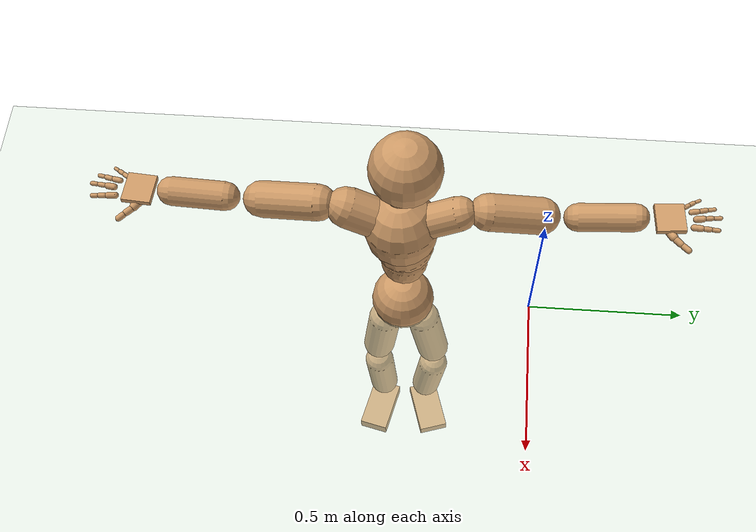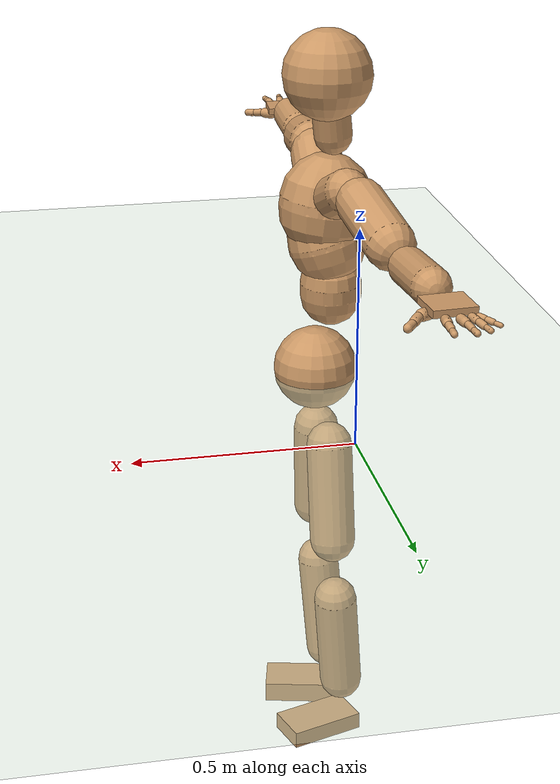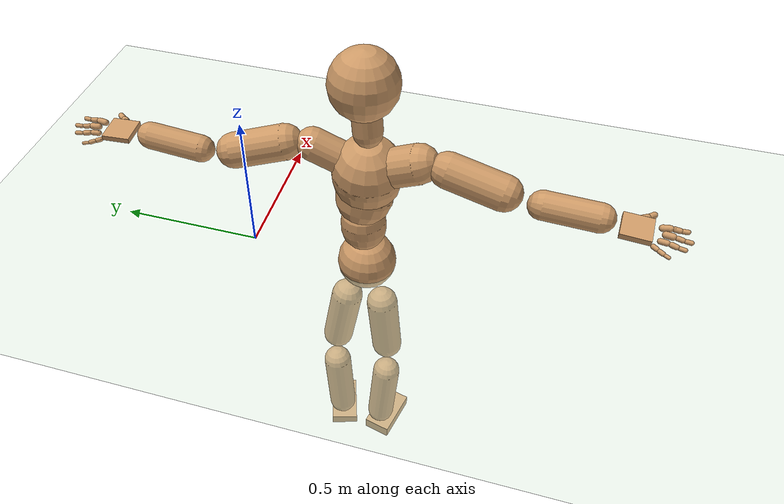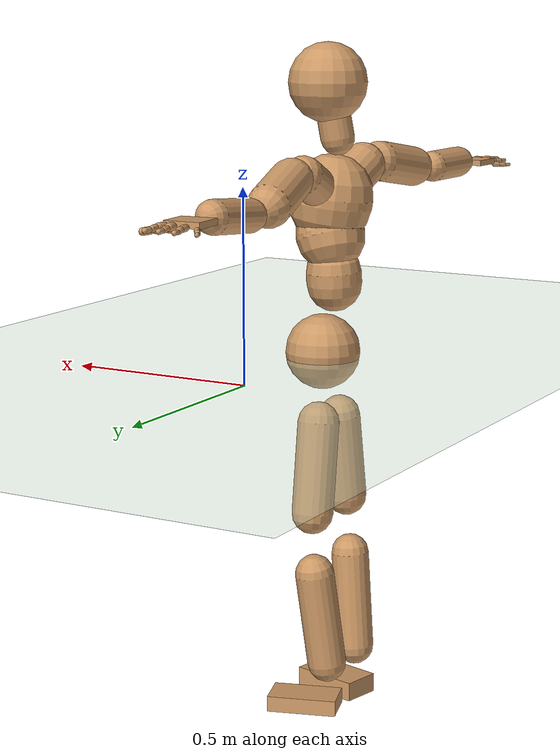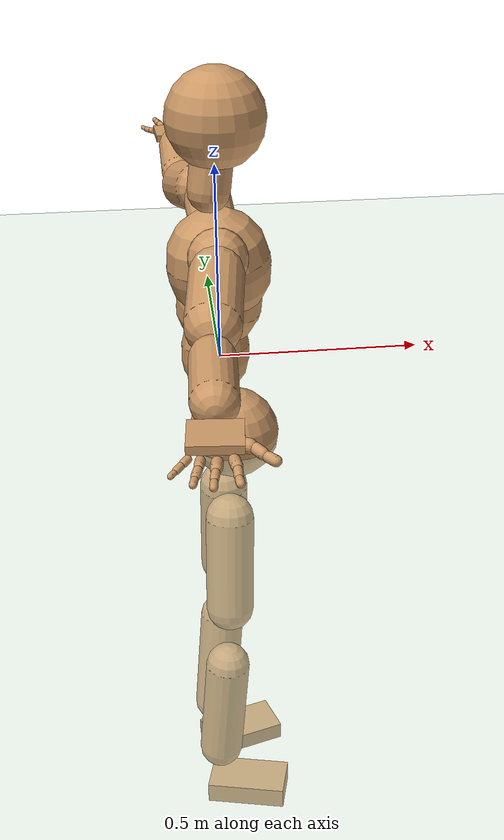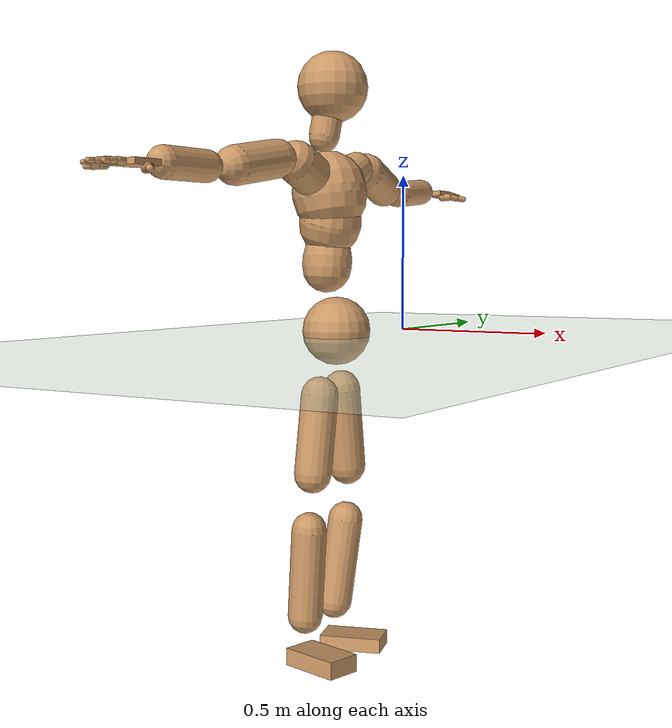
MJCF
<mujoco model="humanoid">
  <compiler coordinate="local" angle="radian"/>
  <default>
    <joint damping="0.0" armature="0.01" stiffness="0.0" limited="true"/>
    <geom conaffinity="1" condim="3" contype="7" margin="0.001" rgba="0.8 0.6 .4 1"/>
  </default>
  <asset>
    <texture type="skybox" builtin="gradient" rgb1=".4 .5 .6" rgb2="0 0 0" width="100" height="100"/>
    <texture builtin="flat" height="1278" mark="cross" markrgb="1 1 1" name="texgeom" random="0.01" rgb1="0.8 0.6 0.4" rgb2="0.8 0.6 0.4" type="cube" width="127"/>
    <texture builtin="checker" height="100" name="texplane" rgb1="0 0 0" rgb2="0.8 0.8 0.8" type="2d" width="100"/>
    <material name="MatPlane" reflectance="0.5" shininess="1" specular="1" texrepeat="60 60" texture="texplane"/>
    <material name="geom" texture="texgeom" texuniform="true"/>
  </asset>
  <worldbody>
    <light cutoff="100" diffuse="1 1 1" dir="-0 0 -1.3" directional="true" exponent="1" pos="0 0 1.3" specular=".1 .1 .1"/>
    <geom conaffinity="1" condim="3" name="floor" pos="0 0 0" rgba="0.8 0.9 0.8 1" size="100 100 .2" type="plane" material="MatPlane"/>
    <body name="Pelvis" pos="0.0012 -0.416 0.0156">
      <freejoint name="Pelvis"/>
      <geom type="sphere" contype="1" conaffinity="1" density="500" size="0.1017" pos="0.0000 0.0000 0.0000" name="Pelvis"/>
      <body name="L_Hip" pos="-0.0218 0.0534 -0.0993">
        <joint name="L_Hip_x" type="hinge" pos="0 0 0" axis="1 0 0" stiffness="800" damping="80" armature="0.02" range="-180.0000 180.0000"/>
        <joint name="L_Hip_y" type="hinge" pos="0 0 0" axis="0 1 0" stiffness="800" damping="80" armature="0.02" range="-180.0000 180.0000"/>
        <joint name="L_Hip_z" type="hinge" pos="0 0 0" axis="0 0 1" stiffness="800" damping="80" armature="0.02" range="-180.0000 180.0000"/>
        <geom type="capsule" contype="1" conaffinity="1" density="500" fromto="-0.0009 0.0124 -0.0818 -0.0037 0.0498 -0.3272" size="0.0559" name="L_Hip"/>
        <body name="L_Knee" pos="-0.0047 0.0622 -0.409">
          <joint name="L_Knee_x" type="hinge" pos="0 0 0" axis="1 0 0" stiffness="800" damping="80" armature="0.02" range="-180.0000 180.0000"/>
          <joint name="L_Knee_y" type="hinge" pos="0 0 0" axis="0 1 0" stiffness="800" damping="80" armature="0.02" range="-180.0000 180.0000"/>
          <joint name="L_Knee_z" type="hinge" pos="0 0 0" axis="0 0 1" stiffness="800" damping="80" armature="0.02" range="-180.0000 180.0000"/>
          <geom type="capsule" contype="1" conaffinity="1" density="500" fromto="-0.0079 -0.0090 -0.0864 -0.0318 -0.0360 -0.3455" size="0.0531" name="L_Knee"/>
          <body name="L_Ankle" pos="-0.0397 -0.045 -0.4319">
            <joint name="L_Ankle_x" type="hinge" pos="0 0 0" axis="1 0 0" stiffness="800" damping="80" armature="0.02" range="-180.0000 180.0000"/>
            <joint name="L_Ankle_y" type="hinge" pos="0 0 0" axis="0 1 0" stiffness="800" damping="80" armature="0.02" range="-180.0000 180.0000"/>
            <joint name="L_Ankle_z" type="hinge" pos="0 0 0" axis="0 0 1" stiffness="800" damping="80" armature="0.02" range="-180.0000 180.0000"/>
            <geom type="box" contype="1" conaffinity="1" density="500" pos="0.0700 0.0218 -0.0317" size="0.095 0.0527 0.0216" quat="0.9886 0.0000 0.0000 0.1506" name="L_Ankle"/>
            <body name="L_Toe" pos="0.14 0.0437 -0.0635">
              <joint name="L_Toe_x" type="hinge" pos="0 0 0" axis="1 0 0" stiffness="500" damping="50" armature="0.02" range="-180.0000 180.0000"/>
              <joint name="L_Toe_y" type="hinge" pos="0 0 0" axis="0 1 0" stiffness="500" damping="50" armature="0.02" range="-180.0000 180.0000"/>
              <joint name="L_Toe_z" type="hinge" pos="0 0 0" axis="0 0 1" stiffness="500" damping="50" armature="0.02" range="-180.0000 180.0000"/>
              <geom type="box" contype="1" conaffinity="1" density="500" pos="0.0000 0.0000 0.0317" size="0.001 0.0025 0.0011" quat="0.9879 0.0000 0.0000 0.1549" name="L_Toe"/>
            </body>
          </body>
        </body>
      </body>
      <body name="R_Hip" pos="-0.0163 -0.0552 -0.1106">
        <joint name="R_Hip_x" type="hinge" pos="0 0 0" axis="1 0 0" stiffness="800" damping="80" armature="0.02" range="-180.0000 180.0000"/>
        <joint name="R_Hip_y" type="hinge" pos="0 0 0" axis="0 1 0" stiffness="800" damping="80" armature="0.02" range="-180.0000 180.0000"/>
        <joint name="R_Hip_z" type="hinge" pos="0 0 0" axis="0 0 1" stiffness="800" damping="80" armature="0.02" range="-180.0000 180.0000"/>
        <geom type="capsule" contype="1" conaffinity="1" density="500" fromto="-0.0023 -0.0094 -0.0781 -0.0093 -0.0377 -0.3125" size="0.0555" name="R_Hip"/>
        <body name="R_Knee" pos="-0.0116 -0.0471 -0.3907">
          <joint name="R_Knee_x" type="hinge" pos="0 0 0" axis="1 0 0" stiffness="800" damping="80" armature="0.02" range="-180.0000 180.0000"/>
          <joint name="R_Knee_y" type="hinge" pos="0 0 0" axis="0 1 0" stiffness="800" damping="80" armature="0.02" range="-180.0000 180.0000"/>
          <joint name="R_Knee_z" type="hinge" pos="0 0 0" axis="0 0 1" stiffness="800" damping="80" armature="0.02" range="-180.0000 180.0000"/>
          <geom type="capsule" contype="1" conaffinity="1" density="500" fromto="-0.0075 0.0036 -0.0893 -0.0299 0.0145 -0.3572" size="0.0524" name="R_Knee"/>
          <body name="R_Ankle" pos="-0.0374 0.0181 -0.4465">
            <joint name="R_Ankle_x" type="hinge" pos="0 0 0" axis="1 0 0" stiffness="800" damping="80" armature="0.02" range="-180.0000 180.0000"/>
            <joint name="R_Ankle_y" type="hinge" pos="0 0 0" axis="0 1 0" stiffness="800" damping="80" armature="0.02" range="-180.0000 180.0000"/>
            <joint name="R_Ankle_z" type="hinge" pos="0 0 0" axis="0 0 1" stiffness="800" damping="80" armature="0.02" range="-180.0000 180.0000"/>
            <geom type="box" contype="1" conaffinity="1" density="500" pos="0.0732 -0.0174 -0.0311" size="0.095 0.0527 0.0262" quat="0.9932 0.0000 0.0000 -0.1166" name="R_Ankle"/>
            <body name="R_Toe" pos="0.1463 -0.0348 -0.0623">
              <joint name="R_Toe_x" type="hinge" pos="0 0 0" axis="1 0 0" stiffness="500" damping="50" armature="0.02" range="-180.0000 180.0000"/>
              <joint name="R_Toe_y" type="hinge" pos="0 0 0" axis="0 1 0" stiffness="500" damping="50" armature="0.02" range="-180.0000 180.0000"/>
              <joint name="R_Toe_z" type="hinge" pos="0 0 0" axis="0 0 1" stiffness="500" damping="50" armature="0.02" range="-180.0000 180.0000"/>
              <geom type="box" contype="1" conaffinity="1" density="500" pos="0.0000 0.0000 0.0265" size="0.001 0.0025 0.0011" quat="0.9941 0.0000 0.0000 -0.1087" name="R_Toe"/>
            </body>
          </body>
        </body>
      </body>
      <body name="Torso" pos="-0.0376 -0.0007 0.12">
        <joint name="Torso_x" type="hinge" pos="0 0 0" axis="1 0 0" stiffness="1000" damping="100" armature="0.02" range="-180.0000 180.0000"/>
        <joint name="Torso_y" type="hinge" pos="0 0 0" axis="0 1 0" stiffness="1000" damping="100" armature="0.02" range="-180.0000 180.0000"/>
        <joint name="Torso_z" type="hinge" pos="0 0 0" axis="0 0 1" stiffness="1000" damping="100" armature="0.02" range="-180.0000 180.0000"/>
        <geom type="capsule" contype="1" conaffinity="1" density="500" fromto="0.0027 0.0065 0.1020 0.0018 0.0043 0.0680" size="0.0739" name="Torso"/>
        <body name="Spine" pos="0.0045 0.0108 0.17">
          <joint name="Spine_x" type="hinge" pos="0 0 0" axis="1 0 0" stiffness="1000" damping="100" armature="0.02" range="-180.0000 180.0000"/>
          <joint name="Spine_y" type="hinge" pos="0 0 0" axis="0 1 0" stiffness="1000" damping="100" armature="0.02" range="-180.0000 180.0000"/>
          <joint name="Spine_z" type="hinge" pos="0 0 0" axis="0 0 1" stiffness="1000" damping="100" armature="0.02" range="-180.0000 180.0000"/>
          <geom type="capsule" contype="1" conaffinity="1" density="500" fromto="0.0110 -0.0061 0.0377 0.0073 -0.0041 0.0252" size="0.0925" name="Spine"/>
          <body name="Chest" pos="0.0183 -0.0102 0.0629">
            <joint name="Chest_x" type="hinge" pos="0 0 0" axis="1 0 0" stiffness="1000" damping="100" armature="0.02" range="-180.0000 180.0000"/>
            <joint name="Chest_y" type="hinge" pos="0 0 0" axis="0 1 0" stiffness="1000" damping="100" armature="0.02" range="-180.0000 180.0000"/>
            <joint name="Chest_z" type="hinge" pos="0 0 0" axis="0 0 1" stiffness="1000" damping="100" armature="0.02" range="-180.0000 180.0000"/>
            <geom type="capsule" contype="1" conaffinity="1" density="500" fromto="-0.0092 -0.0028 0.0705 -0.0061 -0.0019 0.0470" size="0.1108" name="Chest"/>
            <body name="Neck" pos="-0.0288 -0.0101 0.1854">
              <joint name="Neck_x" type="hinge" pos="0 0 0" axis="1 0 0" stiffness="500" damping="50" armature="0.02" range="-180.0000 180.0000"/>
              <joint name="Neck_y" type="hinge" pos="0 0 0" axis="0 1 0" stiffness="500" damping="50" armature="0.02" range="-180.0000 180.0000"/>
              <joint name="Neck_z" type="hinge" pos="0 0 0" axis="0 0 1" stiffness="500" damping="50" armature="0.02" range="-180.0000 180.0000"/>
              <geom type="capsule" contype="1" conaffinity="1" density="500" fromto="0.0048 0.0047 0.0364 0.0191 0.0188 0.1458" size="0.0453" name="Neck"/>
              <body name="Head" pos="0.0239 0.0235 0.1822">
                <joint name="Head_x" type="hinge" pos="0 0 0" axis="1 0 0" stiffness="500" damping="50" armature="0.02" range="-180.0000 180.0000"/>
                <joint name="Head_y" type="hinge" pos="0 0 0" axis="0 1 0" stiffness="500" damping="50" armature="0.02" range="-180.0000 180.0000"/>
                <joint name="Head_z" type="hinge" pos="0 0 0" axis="0 0 1" stiffness="500" damping="50" armature="0.02" range="-180.0000 180.0000"/>
                <geom type="sphere" contype="1" conaffinity="1" density="500" size="0.1051" pos="0.0000 0.0000 0.0000" name="Head"/>
              </body>
            </body>
            <body name="L_Thorax" pos="-0.0067 0.0452 0.0833">
              <joint name="L_Thorax_x" type="hinge" pos="0 0 0" axis="1 0 0" stiffness="500" damping="50" armature="0.02" range="-180.0000 180.0000"/>
              <joint name="L_Thorax_y" type="hinge" pos="0 0 0" axis="0 1 0" stiffness="500" damping="50" armature="0.02" range="-180.0000 180.0000"/>
              <joint name="L_Thorax_z" type="hinge" pos="0 0 0" axis="0 0 1" stiffness="500" damping="50" armature="0.02" range="-180.0000 180.0000"/>
              <geom type="capsule" contype="1" conaffinity="1" density="500" fromto="-0.0026 0.0304 0.0138 -0.0106 0.1217 0.0550" size="0.0522" name="L_Thorax"/>
              <body name="L_Shoulder" pos="-0.0132 0.1521 0.0688">
                <joint name="L_Shoulder_x" type="hinge" pos="0 0 0" axis="1 0 0" stiffness="500" damping="50" armature="0.02" range="-180.0000 180.0000"/>
                <joint name="L_Shoulder_y" type="hinge" pos="0 0 0" axis="0 1 0" stiffness="500" damping="50" armature="0.02" range="-180.0000 180.0000"/>
                <joint name="L_Shoulder_z" type="hinge" pos="0 0 0" axis="0 0 1" stiffness="500" damping="50" armature="0.02" range="-180.0000 180.0000"/>
                <geom type="capsule" contype="1" conaffinity="1" density="500" fromto="-0.0089 0.0530 -0.0157 -0.0355 0.2118 -0.0629" size="0.0561" name="L_Shoulder"/>
                <body name="L_Elbow" pos="-0.0444 0.2648 -0.0787">
                  <joint name="L_Elbow_x" type="hinge" pos="0 0 0" axis="1 0 0" stiffness="500" damping="50" armature="0.02" range="-720.0000 720.0000"/>
                  <joint name="L_Elbow_y" type="hinge" pos="0 0 0" axis="0 1 0" stiffness="500" damping="50" armature="0.02" range="-720.0000 720.0000"/>
                  <joint name="L_Elbow_z" type="hinge" pos="0 0 0" axis="0 0 1" stiffness="500" damping="50" armature="0.02" range="-720.0000 720.0000"/>
                  <geom type="capsule" contype="1" conaffinity="1" density="500" fromto="-0.0002 0.0557 0.0050 -0.0009 0.2227 0.0200" size="0.0426" name="L_Elbow"/>
                  <body name="L_Wrist" pos="-0.0011 0.2784 0.025">
                    <joint name="L_Wrist_x" type="hinge" pos="0 0 0" axis="1 0 0" stiffness="300" damping="30" armature="0.02" range="-180.0000 180.0000"/>
                    <joint name="L_Wrist_y" type="hinge" pos="0 0 0" axis="0 1 0" stiffness="300" damping="30" armature="0.02" range="-180.0000 180.0000"/>
                    <joint name="L_Wrist_z" type="hinge" pos="0 0 0" axis="0 0 1" stiffness="300" damping="30" armature="0.02" range="-180.0000 180.0000"/>
                    <geom type="box" contype="1" conaffinity="1" density="500" pos="-0.0032 0.0465 -0.0055" size="0.044 0.0466 0.0081" quat="0.7313 0.0000 0.0000 -0.6821" name="L_Wrist"/>
                    <body name="L_Index1" pos="0.0214 0.1092 -0.0077">
                      <joint name="L_Index1_x" type="hinge" pos="0 0 0" axis="1 0 0" stiffness="100" damping="10" armature="0.02" range="-180.0000 180.0000"/>
                      <joint name="L_Index1_y" type="hinge" pos="0 0 0" axis="0 1 0" stiffness="100" damping="10" armature="0.02" range="-180.0000 180.0000"/>
                      <joint name="L_Index1_z" type="hinge" pos="0 0 0" axis="0 0 1" stiffness="100" damping="10" armature="0.02" range="-180.0000 180.0000"/>
                      <geom type="capsule" contype="1" conaffinity="1" density="500" fromto="0.0007 0.0068 0.0004 0.0029 0.0272 0.0014" size="0.0099" name="L_Index1"/>
                      <body name="L_Index2" pos="0.0037 0.034 0.0018">
                        <joint name="L_Index2_x" type="hinge" pos="0 0 0" axis="1 0 0" stiffness="100" damping="10" armature="0.02" range="-180.0000 180.0000"/>
                        <joint name="L_Index2_y" type="hinge" pos="0 0 0" axis="0 1 0" stiffness="100" damping="10" armature="0.02" range="-180.0000 180.0000"/>
                        <joint name="L_Index2_z" type="hinge" pos="0 0 0" axis="0 0 1" stiffness="100" damping="10" armature="0.02" range="-180.0000 180.0000"/>
                        <geom type="capsule" contype="1" conaffinity="1" density="500" fromto="-0.0000 0.0048 -0.0005 -0.0002 0.0191 -0.0021" size="0.008" name="L_Index2"/>
                        <body name="L_Index3" pos="-0.0002 0.0239 -0.0027">
                          <joint name="L_Index3_x" type="hinge" pos="0 0 0" axis="1 0 0" stiffness="100" damping="10" armature="0.02" range="-180.0000 180.0000"/>
                          <joint name="L_Index3_y" type="hinge" pos="0 0 0" axis="0 1 0" stiffness="100" damping="10" armature="0.02" range="-180.0000 180.0000"/>
                          <joint name="L_Index3_z" type="hinge" pos="0 0 0" axis="0 0 1" stiffness="100" damping="10" armature="0.02" range="-180.0000 180.0000"/>
                          <geom type="capsule" contype="1" conaffinity="1" density="500" fromto="0.0004 0.0052 -0.0001 0.0014 0.0207 -0.0005" size="0.0068" name="L_Index3"/>
                        </body>
                      </body>
                    </body>
                    <body name="L_Middle1" pos="-0.0044 0.1174 -0.005">
                      <joint name="L_Middle1_x" type="hinge" pos="0 0 0" axis="1 0 0" stiffness="100" damping="10" armature="0.02" range="-180.0000 180.0000"/>
                      <joint name="L_Middle1_y" type="hinge" pos="0 0 0" axis="0 1 0" stiffness="100" damping="10" armature="0.02" range="-180.0000 180.0000"/>
                      <joint name="L_Middle1_z" type="hinge" pos="0 0 0" axis="0 0 1" stiffness="100" damping="10" armature="0.02" range="-180.0000 180.0000"/>
                      <geom type="capsule" contype="1" conaffinity="1" density="500" fromto="-0.0009 0.0065 0.0001 -0.0037 0.0259 0.0003" size="0.01" name="L_Middle1"/>
                      <body name="L_Middle2" pos="-0.0047 0.0323 0.0004">
                        <joint name="L_Middle2_x" type="hinge" pos="0 0 0" axis="1 0 0" stiffness="100" damping="10" armature="0.02" range="-180.0000 180.0000"/>
                        <joint name="L_Middle2_y" type="hinge" pos="0 0 0" axis="0 1 0" stiffness="100" damping="10" armature="0.02" range="-180.0000 180.0000"/>
                        <joint name="L_Middle2_z" type="hinge" pos="0 0 0" axis="0 0 1" stiffness="100" damping="10" armature="0.02" range="-180.0000 180.0000"/>
                        <geom type="capsule" contype="1" conaffinity="1" density="500" fromto="-0.0009 0.0050 -0.0005 -0.0036 0.0198 -0.0021" size="0.0074" name="L_Middle2"/>
                        <body name="L_Middle3" pos="-0.0045 0.0248 -0.0026">
                          <joint name="L_Middle3_x" type="hinge" pos="0 0 0" axis="1 0 0" stiffness="100" damping="10" armature="0.02" range="-180.0000 180.0000"/>
                          <joint name="L_Middle3_y" type="hinge" pos="0 0 0" axis="0 1 0" stiffness="100" damping="10" armature="0.02" range="-180.0000 180.0000"/>
                          <joint name="L_Middle3_z" type="hinge" pos="0 0 0" axis="0 0 1" stiffness="100" damping="10" armature="0.02" range="-180.0000 180.0000"/>
                          <geom type="capsule" contype="1" conaffinity="1" density="500" fromto="-0.0005 0.0054 -0.0001 -0.0020 0.0214 -0.0005" size="0.0065" name="L_Middle3"/>
                        </body>
                      </body>
                    </body>
                    <body name="L_Pinky1" pos="-0.048 0.0907 -0.0142">
                      <joint name="L_Pinky1_x" type="hinge" pos="0 0 0" axis="1 0 0" stiffness="100" damping="10" armature="0.02" range="-180.0000 180.0000"/>
                      <joint name="L_Pinky1_y" type="hinge" pos="0 0 0" axis="0 1 0" stiffness="100" damping="10" armature="0.02" range="-180.0000 180.0000"/>
                      <joint name="L_Pinky1_z" type="hinge" pos="0 0 0" axis="0 0 1" stiffness="100" damping="10" armature="0.02" range="-180.0000 180.0000"/>
                      <geom type="capsule" contype="1" conaffinity="1" density="500" fromto="-0.0025 0.0034 -0.0003 -0.0098 0.0138 -0.0013" size="0.0071" name="L_Pinky1"/>
                      <body name="L_Pinky2" pos="-0.0123 0.0172 -0.0016">
                        <joint name="L_Pinky2_x" type="hinge" pos="0 0 0" axis="1 0 0" stiffness="100" damping="10" armature="0.02" range="-180.0000 180.0000"/>
                        <joint name="L_Pinky2_y" type="hinge" pos="0 0 0" axis="0 1 0" stiffness="100" damping="10" armature="0.02" range="-180.0000 180.0000"/>
                        <joint name="L_Pinky2_z" type="hinge" pos="0 0 0" axis="0 0 1" stiffness="100" damping="10" armature="0.02" range="-180.0000 180.0000"/>
                        <geom type="capsule" contype="1" conaffinity="1" density="500" fromto="-0.0023 0.0034 -0.0004 -0.0091 0.0135 -0.0016" size="0.0067" name="L_Pinky2"/>
                        <body name="L_Pinky3" pos="-0.0114 0.0169 -0.002">
                          <joint name="L_Pinky3_x" type="hinge" pos="0 0 0" axis="1 0 0" stiffness="100" damping="10" armature="0.02" range="-180.0000 180.0000"/>
                          <joint name="L_Pinky3_y" type="hinge" pos="0 0 0" axis="0 1 0" stiffness="100" damping="10" armature="0.02" range="-180.0000 180.0000"/>
                          <joint name="L_Pinky3_z" type="hinge" pos="0 0 0" axis="0 0 1" stiffness="100" damping="10" armature="0.02" range="-180.0000 180.0000"/>
                          <geom type="capsule" contype="1" conaffinity="1" density="500" fromto="-0.0019 0.0038 0.0000 -0.0075 0.0151 0.0000" size="0.0051" name="L_Pinky3"/>
                        </body>
                      </body>
                    </body>
                    <body name="L_Ring1" pos="-0.0301 0.1048 -0.0082">
                      <joint name="L_Ring1_x" type="hinge" pos="0 0 0" axis="1 0 0" stiffness="100" damping="10" armature="0.02" range="-180.0000 180.0000"/>
                      <joint name="L_Ring1_y" type="hinge" pos="0 0 0" axis="0 1 0" stiffness="100" damping="10" armature="0.02" range="-180.0000 180.0000"/>
                      <joint name="L_Ring1_z" type="hinge" pos="0 0 0" axis="0 0 1" stiffness="100" damping="10" armature="0.02" range="-180.0000 180.0000"/>
                      <geom type="capsule" contype="1" conaffinity="1" density="500" fromto="-0.0011 0.0060 0.0001 -0.0042 0.0240 0.0005" size="0.0085" name="L_Ring1"/>
                      <body name="L_Ring2" pos="-0.0053 0.03 0.0006">
                        <joint name="L_Ring2_x" type="hinge" pos="0 0 0" axis="1 0 0" stiffness="100" damping="10" armature="0.02" range="-180.0000 180.0000"/>
                        <joint name="L_Ring2_y" type="hinge" pos="0 0 0" axis="0 1 0" stiffness="100" damping="10" armature="0.02" range="-180.0000 180.0000"/>
                        <joint name="L_Ring2_z" type="hinge" pos="0 0 0" axis="0 0 1" stiffness="100" damping="10" armature="0.02" range="-180.0000 180.0000"/>
                        <geom type="capsule" contype="1" conaffinity="1" density="500" fromto="-0.0014 0.0049 -0.0005 -0.0056 0.0195 -0.0020" size="0.0079" name="L_Ring2"/>
                        <body name="L_Ring3" pos="-0.007 0.0244 -0.0024">
                          <joint name="L_Ring3_x" type="hinge" pos="0 0 0" axis="1 0 0" stiffness="100" damping="10" armature="0.02" range="-180.0000 180.0000"/>
                          <joint name="L_Ring3_y" type="hinge" pos="0 0 0" axis="0 1 0" stiffness="100" damping="10" armature="0.02" range="-180.0000 180.0000"/>
                          <joint name="L_Ring3_z" type="hinge" pos="0 0 0" axis="0 0 1" stiffness="100" damping="10" armature="0.02" range="-180.0000 180.0000"/>
                          <geom type="capsule" contype="1" conaffinity="1" density="500" fromto="-0.0010 0.0053 -0.0001 -0.0040 0.0211 -0.0004" size="0.0061" name="L_Ring3"/>
                        </body>
                      </body>
                    </body>
                    <body name="L_Thumb1" pos="0.0287 0.043 -0.0198">
                      <joint name="L_Thumb1_x" type="hinge" pos="0 0 0" axis="1 0 0" stiffness="100" damping="10" armature="0.02" range="-180.0000 180.0000"/>
                      <joint name="L_Thumb1_y" type="hinge" pos="0 0 0" axis="0 1 0" stiffness="100" damping="10" armature="0.02" range="-180.0000 180.0000"/>
                      <joint name="L_Thumb1_z" type="hinge" pos="0 0 0" axis="0 0 1" stiffness="100" damping="10" armature="0.02" range="-180.0000 180.0000"/>
                      <geom type="capsule" contype="1" conaffinity="1" density="500" fromto="0.0056 0.0035 0.0003 0.0226 0.0141 0.0013" size="0.0131" name="L_Thumb1"/>
                      <body name="L_Thumb2" pos="0.0282 0.0176 0.0016">
                        <joint name="L_Thumb2_x" type="hinge" pos="0 0 0" axis="1 0 0" stiffness="100" damping="10" armature="0.02" range="-180.0000 180.0000"/>
                        <joint name="L_Thumb2_y" type="hinge" pos="0 0 0" axis="0 1 0" stiffness="100" damping="10" armature="0.02" range="-180.0000 180.0000"/>
                        <joint name="L_Thumb2_z" type="hinge" pos="0 0 0" axis="0 0 1" stiffness="100" damping="10" armature="0.02" range="-180.0000 180.0000"/>
                        <geom type="capsule" contype="1" conaffinity="1" density="500" fromto="0.0035 0.0043 -0.0010 0.0141 0.0173 -0.0039" size="0.0104" name="L_Thumb2"/>
                        <body name="L_Thumb3" pos="0.0176 0.0216 -0.0049">
                          <joint name="L_Thumb3_x" type="hinge" pos="0 0 0" axis="1 0 0" stiffness="100" damping="10" armature="0.02" range="-180.0000 180.0000"/>
                          <joint name="L_Thumb3_y" type="hinge" pos="0 0 0" axis="0 1 0" stiffness="100" damping="10" armature="0.02" range="-180.0000 180.0000"/>
                          <joint name="L_Thumb3_z" type="hinge" pos="0 0 0" axis="0 0 1" stiffness="100" damping="10" armature="0.02" range="-180.0000 180.0000"/>
                          <geom type="capsule" contype="1" conaffinity="1" density="500" fromto="0.0039 0.0047 -0.0006 0.0157 0.0189 -0.0023" size="0.0094" name="L_Thumb3"/>
                        </body>
                      </body>
                    </body>
                  </body>
                </body>
              </body>
            </body>
            <body name="R_Thorax" pos="-0.0103 -0.049 0.0838">
              <joint name="R_Thorax_x" type="hinge" pos="0 0 0" axis="1 0 0" stiffness="500" damping="50" armature="0.02" range="-180.0000 180.0000"/>
              <joint name="R_Thorax_y" type="hinge" pos="0 0 0" axis="0 1 0" stiffness="500" damping="50" armature="0.02" range="-180.0000 180.0000"/>
              <joint name="R_Thorax_z" type="hinge" pos="0 0 0" axis="0 0 1" stiffness="500" damping="50" armature="0.02" range="-180.0000 180.0000"/>
              <geom type="capsule" contype="1" conaffinity="1" density="500" fromto="-0.0020 -0.0281 0.0134 -0.0080 -0.1122 0.0535" size="0.0615" name="R_Thorax"/>
              <body name="R_Shoulder" pos="-0.01 -0.1403 0.0669">
                <joint name="R_Shoulder_x" type="hinge" pos="0 0 0" axis="1 0 0" stiffness="500" damping="50" armature="0.02" range="-180.0000 180.0000"/>
                <joint name="R_Shoulder_y" type="hinge" pos="0 0 0" axis="0 1 0" stiffness="500" damping="50" armature="0.02" range="-180.0000 180.0000"/>
                <joint name="R_Shoulder_z" type="hinge" pos="0 0 0" axis="0 0 1" stiffness="500" damping="50" armature="0.02" range="-180.0000 180.0000"/>
                <geom type="capsule" contype="1" conaffinity="1" density="500" fromto="-0.0065 -0.0569 -0.0097 -0.0258 -0.2277 -0.0388" size="0.055" name="R_Shoulder"/>
                <body name="R_Elbow" pos="-0.0323 -0.2846 -0.0485">
                  <joint name="R_Elbow_x" type="hinge" pos="0 0 0" axis="1 0 0" stiffness="500" damping="50" armature="0.02" range="-720.0000 720.0000"/>
                  <joint name="R_Elbow_y" type="hinge" pos="0 0 0" axis="0 1 0" stiffness="500" damping="50" armature="0.02" range="-720.0000 720.0000"/>
                  <joint name="R_Elbow_z" type="hinge" pos="0 0 0" axis="0 0 1" stiffness="500" damping="50" armature="0.02" range="-720.0000 720.0000"/>
                  <geom type="capsule" contype="1" conaffinity="1" density="500" fromto="-0.0024 -0.0539 -0.0000 -0.0096 -0.2155 -0.0000" size="0.0436" name="R_Elbow"/>
                  <body name="R_Wrist" pos="-0.0119 -0.2694 0">
                    <joint name="R_Wrist_x" type="hinge" pos="0 0 0" axis="1 0 0" stiffness="300" damping="30" armature="0.02" range="-180.0000 180.0000"/>
                    <joint name="R_Wrist_y" type="hinge" pos="0 0 0" axis="0 1 0" stiffness="300" damping="30" armature="0.02" range="-180.0000 180.0000"/>
                    <joint name="R_Wrist_z" type="hinge" pos="0 0 0" axis="0 0 1" stiffness="300" damping="30" armature="0.02" range="-180.0000 180.0000"/>
                    <geom type="box" contype="1" conaffinity="1" density="500" pos="-0.0037 -0.0462 -0.0074" size="0.044 0.0477 0.0083" quat="0.7345 0.0000 0.0000 0.6787" name="R_Wrist"/>
                    <body name="R_Index1" pos="0.0206 -0.1087 -0.0115">
                      <joint name="R_Index1_x" type="hinge" pos="0 0 0" axis="1 0 0" stiffness="100" damping="10" armature="0.02" range="-180.0000 180.0000"/>
                      <joint name="R_Index1_y" type="hinge" pos="0 0 0" axis="0 1 0" stiffness="100" damping="10" armature="0.02" range="-180.0000 180.0000"/>
                      <joint name="R_Index1_z" type="hinge" pos="0 0 0" axis="0 0 1" stiffness="100" damping="10" armature="0.02" range="-180.0000 180.0000"/>
                      <geom type="capsule" contype="1" conaffinity="1" density="500" fromto="0.0007 -0.0068 0.0004 0.0029 -0.0272 0.0014" size="0.0099" name="R_Index1"/>
                      <body name="R_Index2" pos="0.0037 -0.034 0.0018">
                        <joint name="R_Index2_x" type="hinge" pos="0 0 0" axis="1 0 0" stiffness="100" damping="10" armature="0.02" range="-180.0000 180.0000"/>
                        <joint name="R_Index2_y" type="hinge" pos="0 0 0" axis="0 1 0" stiffness="100" damping="10" armature="0.02" range="-180.0000 180.0000"/>
                        <joint name="R_Index2_z" type="hinge" pos="0 0 0" axis="0 0 1" stiffness="100" damping="10" armature="0.02" range="-180.0000 180.0000"/>
                        <geom type="capsule" contype="1" conaffinity="1" density="500" fromto="-0.0000 -0.0048 -0.0005 -0.0002 -0.0191 -0.0021" size="0.008" name="R_Index2"/>
                        <body name="R_Index3" pos="-0.0002 -0.0239 -0.0027">
                          <joint name="R_Index3_x" type="hinge" pos="0 0 0" axis="1 0 0" stiffness="100" damping="10" armature="0.02" range="-180.0000 180.0000"/>
                          <joint name="R_Index3_y" type="hinge" pos="0 0 0" axis="0 1 0" stiffness="100" damping="10" armature="0.02" range="-180.0000 180.0000"/>
                          <joint name="R_Index3_z" type="hinge" pos="0 0 0" axis="0 0 1" stiffness="100" damping="10" armature="0.02" range="-180.0000 180.0000"/>
                          <geom type="capsule" contype="1" conaffinity="1" density="500" fromto="0.0004 -0.0044 -0.0001 0.0014 -0.0175 -0.0005" size="0.0071" name="R_Index3"/>
                        </body>
                      </body>
                    </body>
                    <body name="R_Middle1" pos="-0.0053 -0.1169 -0.0088">
                      <joint name="R_Middle1_x" type="hinge" pos="0 0 0" axis="1 0 0" stiffness="100" damping="10" armature="0.02" range="-180.0000 180.0000"/>
                      <joint name="R_Middle1_y" type="hinge" pos="0 0 0" axis="0 1 0" stiffness="100" damping="10" armature="0.02" range="-180.0000 180.0000"/>
                      <joint name="R_Middle1_z" type="hinge" pos="0 0 0" axis="0 0 1" stiffness="100" damping="10" armature="0.02" range="-180.0000 180.0000"/>
                      <geom type="capsule" contype="1" conaffinity="1" density="500" fromto="-0.0009 -0.0065 0.0001 -0.0037 -0.0259 0.0003" size="0.01" name="R_Middle1"/>
                      <body name="R_Middle2" pos="-0.0047 -0.0323 0.0004">
                        <joint name="R_Middle2_x" type="hinge" pos="0 0 0" axis="1 0 0" stiffness="100" damping="10" armature="0.02" range="-180.0000 180.0000"/>
                        <joint name="R_Middle2_y" type="hinge" pos="0 0 0" axis="0 1 0" stiffness="100" damping="10" armature="0.02" range="-180.0000 180.0000"/>
                        <joint name="R_Middle2_z" type="hinge" pos="0 0 0" axis="0 0 1" stiffness="100" damping="10" armature="0.02" range="-180.0000 180.0000"/>
                        <geom type="capsule" contype="1" conaffinity="1" density="500" fromto="-0.0009 -0.0050 -0.0005 -0.0036 -0.0198 -0.0021" size="0.0074" name="R_Middle2"/>
                        <body name="R_Middle3" pos="-0.0045 -0.0248 -0.0026">
                          <joint name="R_Middle3_x" type="hinge" pos="0 0 0" axis="1 0 0" stiffness="100" damping="10" armature="0.02" range="-180.0000 180.0000"/>
                          <joint name="R_Middle3_y" type="hinge" pos="0 0 0" axis="0 1 0" stiffness="100" damping="10" armature="0.02" range="-180.0000 180.0000"/>
                          <joint name="R_Middle3_z" type="hinge" pos="0 0 0" axis="0 0 1" stiffness="100" damping="10" armature="0.02" range="-180.0000 180.0000"/>
                          <geom type="capsule" contype="1" conaffinity="1" density="500" fromto="-0.0005 -0.0046 -0.0001 -0.0020 -0.0182 -0.0005" size="0.0068" name="R_Middle3"/>
                        </body>
                      </body>
                    </body>
                    <body name="R_Pinky1" pos="-0.0488 -0.0901 -0.0179">
                      <joint name="R_Pinky1_x" type="hinge" pos="0 0 0" axis="1 0 0" stiffness="100" damping="10" armature="0.02" range="-180.0000 180.0000"/>
                      <joint name="R_Pinky1_y" type="hinge" pos="0 0 0" axis="0 1 0" stiffness="100" damping="10" armature="0.02" range="-180.0000 180.0000"/>
                      <joint name="R_Pinky1_z" type="hinge" pos="0 0 0" axis="0 0 1" stiffness="100" damping="10" armature="0.02" range="-180.0000 180.0000"/>
                      <geom type="capsule" contype="1" conaffinity="1" density="500" fromto="-0.0025 -0.0034 -0.0003 -0.0098 -0.0138 -0.0013" size="0.0071" name="R_Pinky1"/>
                      <body name="R_Pinky2" pos="-0.0123 -0.0172 -0.0016">
                        <joint name="R_Pinky2_x" type="hinge" pos="0 0 0" axis="1 0 0" stiffness="100" damping="10" armature="0.02" range="-180.0000 180.0000"/>
                        <joint name="R_Pinky2_y" type="hinge" pos="0 0 0" axis="0 1 0" stiffness="100" damping="10" armature="0.02" range="-180.0000 180.0000"/>
                        <joint name="R_Pinky2_z" type="hinge" pos="0 0 0" axis="0 0 1" stiffness="100" damping="10" armature="0.02" range="-180.0000 180.0000"/>
                        <geom type="capsule" contype="1" conaffinity="1" density="500" fromto="-0.0023 -0.0034 -0.0004 -0.0091 -0.0135 -0.0016" size="0.0067" name="R_Pinky2"/>
                        <body name="R_Pinky3" pos="-0.0114 -0.0169 -0.002">
                          <joint name="R_Pinky3_x" type="hinge" pos="0 0 0" axis="1 0 0" stiffness="100" damping="10" armature="0.02" range="-180.0000 180.0000"/>
                          <joint name="R_Pinky3_y" type="hinge" pos="0 0 0" axis="0 1 0" stiffness="100" damping="10" armature="0.02" range="-180.0000 180.0000"/>
                          <joint name="R_Pinky3_z" type="hinge" pos="0 0 0" axis="0 0 1" stiffness="100" damping="10" armature="0.02" range="-180.0000 180.0000"/>
                          <geom type="capsule" contype="1" conaffinity="1" density="500" fromto="-0.0019 -0.0030 0.0000 -0.0075 -0.0119 0.0000" size="0.0053" name="R_Pinky3"/>
                        </body>
                      </body>
                    </body>
                    <body name="R_Ring1" pos="-0.0309 -0.1042 -0.012">
                      <joint name="R_Ring1_x" type="hinge" pos="0 0 0" axis="1 0 0" stiffness="100" damping="10" armature="0.02" range="-180.0000 180.0000"/>
                      <joint name="R_Ring1_y" type="hinge" pos="0 0 0" axis="0 1 0" stiffness="100" damping="10" armature="0.02" range="-180.0000 180.0000"/>
                      <joint name="R_Ring1_z" type="hinge" pos="0 0 0" axis="0 0 1" stiffness="100" damping="10" armature="0.02" range="-180.0000 180.0000"/>
                      <geom type="capsule" contype="1" conaffinity="1" density="500" fromto="-0.0011 -0.0060 0.0001 -0.0042 -0.0240 0.0005" size="0.0085" name="R_Ring1"/>
                      <body name="R_Ring2" pos="-0.0053 -0.03 0.0006">
                        <joint name="R_Ring2_x" type="hinge" pos="0 0 0" axis="1 0 0" stiffness="100" damping="10" armature="0.02" range="-180.0000 180.0000"/>
                        <joint name="R_Ring2_y" type="hinge" pos="0 0 0" axis="0 1 0" stiffness="100" damping="10" armature="0.02" range="-180.0000 180.0000"/>
                        <joint name="R_Ring2_z" type="hinge" pos="0 0 0" axis="0 0 1" stiffness="100" damping="10" armature="0.02" range="-180.0000 180.0000"/>
                        <geom type="capsule" contype="1" conaffinity="1" density="500" fromto="-0.0014 -0.0049 -0.0005 -0.0056 -0.0195 -0.0020" size="0.0079" name="R_Ring2"/>
                        <body name="R_Ring3" pos="-0.007 -0.0244 -0.0024">
                          <joint name="R_Ring3_x" type="hinge" pos="0 0 0" axis="1 0 0" stiffness="100" damping="10" armature="0.02" range="-180.0000 180.0000"/>
                          <joint name="R_Ring3_y" type="hinge" pos="0 0 0" axis="0 1 0" stiffness="100" damping="10" armature="0.02" range="-180.0000 180.0000"/>
                          <joint name="R_Ring3_z" type="hinge" pos="0 0 0" axis="0 0 1" stiffness="100" damping="10" armature="0.02" range="-180.0000 180.0000"/>
                          <geom type="capsule" contype="1" conaffinity="1" density="500" fromto="-0.0010 -0.0045 -0.0001 -0.0040 -0.0179 -0.0004" size="0.0064" name="R_Ring3"/>
                        </body>
                      </body>
                    </body>
                    <body name="R_Thumb1" pos="0.0278 -0.0425 -0.0235">
                      <joint name="R_Thumb1_x" type="hinge" pos="0 0 0" axis="1 0 0" stiffness="100" damping="10" armature="0.02" range="-180.0000 180.0000"/>
                      <joint name="R_Thumb1_y" type="hinge" pos="0 0 0" axis="0 1 0" stiffness="100" damping="10" armature="0.02" range="-180.0000 180.0000"/>
                      <joint name="R_Thumb1_z" type="hinge" pos="0 0 0" axis="0 0 1" stiffness="100" damping="10" armature="0.02" range="-180.0000 180.0000"/>
                      <geom type="capsule" contype="1" conaffinity="1" density="500" fromto="0.0056 -0.0035 0.0003 0.0226 -0.0141 0.0013" size="0.0131" name="R_Thumb1"/>
                      <body name="R_Thumb2" pos="0.0282 -0.0176 0.0016">
                        <joint name="R_Thumb2_x" type="hinge" pos="0 0 0" axis="1 0 0" stiffness="100" damping="10" armature="0.02" range="-180.0000 180.0000"/>
                        <joint name="R_Thumb2_y" type="hinge" pos="0 0 0" axis="0 1 0" stiffness="100" damping="10" armature="0.02" range="-180.0000 180.0000"/>
                        <joint name="R_Thumb2_z" type="hinge" pos="0 0 0" axis="0 0 1" stiffness="100" damping="10" armature="0.02" range="-180.0000 180.0000"/>
                        <geom type="capsule" contype="1" conaffinity="1" density="500" fromto="0.0035 -0.0043 -0.0010 0.0141 -0.0173 -0.0039" size="0.0104" name="R_Thumb2"/>
                        <body name="R_Thumb3" pos="0.0176 -0.0216 -0.0049">
                          <joint name="R_Thumb3_x" type="hinge" pos="0 0 0" axis="1 0 0" stiffness="100" damping="10" armature="0.02" range="-180.0000 180.0000"/>
                          <joint name="R_Thumb3_y" type="hinge" pos="0 0 0" axis="0 1 0" stiffness="100" damping="10" armature="0.02" range="-180.0000 180.0000"/>
                          <joint name="R_Thumb3_z" type="hinge" pos="0 0 0" axis="0 0 1" stiffness="100" damping="10" armature="0.02" range="-180.0000 180.0000"/>
                          <geom type="capsule" contype="1" conaffinity="1" density="500" fromto="0.0039 -0.0039 -0.0006 0.0157 -0.0157 -0.0023" size="0.0096" name="R_Thumb3"/>
                        </body>
                      </body>
                    </body>
                  </body>
                </body>
              </body>
            </body>
          </body>
        </body>
      </body>
    </body>
  </worldbody>
  <actuator>
    <motor name="L_Hip_x" joint="L_Hip_x" gear="500"/>
    <motor name="L_Hip_y" joint="L_Hip_y" gear="500"/>
    <motor name="L_Hip_z" joint="L_Hip_z" gear="500"/>
    <motor name="L_Knee_x" joint="L_Knee_x" gear="500"/>
    <motor name="L_Knee_y" joint="L_Knee_y" gear="500"/>
    <motor name="L_Knee_z" joint="L_Knee_z" gear="500"/>
    <motor name="L_Ankle_x" joint="L_Ankle_x" gear="500"/>
    <motor name="L_Ankle_y" joint="L_Ankle_y" gear="500"/>
    <motor name="L_Ankle_z" joint="L_Ankle_z" gear="500"/>
    <motor name="L_Toe_x" joint="L_Toe_x" gear="500"/>
    <motor name="L_Toe_y" joint="L_Toe_y" gear="500"/>
    <motor name="L_Toe_z" joint="L_Toe_z" gear="500"/>
    <motor name="R_Hip_x" joint="R_Hip_x" gear="500"/>
    <motor name="R_Hip_y" joint="R_Hip_y" gear="500"/>
    <motor name="R_Hip_z" joint="R_Hip_z" gear="500"/>
    <motor name="R_Knee_x" joint="R_Knee_x" gear="500"/>
    <motor name="R_Knee_y" joint="R_Knee_y" gear="500"/>
    <motor name="R_Knee_z" joint="R_Knee_z" gear="500"/>
    <motor name="R_Ankle_x" joint="R_Ankle_x" gear="500"/>
    <motor name="R_Ankle_y" joint="R_Ankle_y" gear="500"/>
    <motor name="R_Ankle_z" joint="R_Ankle_z" gear="500"/>
    <motor name="R_Toe_x" joint="R_Toe_x" gear="500"/>
    <motor name="R_Toe_y" joint="R_Toe_y" gear="500"/>
    <motor name="R_Toe_z" joint="R_Toe_z" gear="500"/>
    <motor name="Torso_x" joint="Torso_x" gear="500"/>
    <motor name="Torso_y" joint="Torso_y" gear="500"/>
    <motor name="Torso_z" joint="Torso_z" gear="500"/>
    <motor name="Spine_x" joint="Spine_x" gear="500"/>
    <motor name="Spine_y" joint="Spine_y" gear="500"/>
    <motor name="Spine_z" joint="Spine_z" gear="500"/>
    <motor name="Chest_x" joint="Chest_x" gear="500"/>
    <motor name="Chest_y" joint="Chest_y" gear="500"/>
    <motor name="Chest_z" joint="Chest_z" gear="500"/>
    <motor name="Neck_x" joint="Neck_x" gear="500"/>
    <motor name="Neck_y" joint="Neck_y" gear="500"/>
    <motor name="Neck_z" joint="Neck_z" gear="500"/>
    <motor name="Head_x" joint="Head_x" gear="500"/>
    <motor name="Head_y" joint="Head_y" gear="500"/>
    <motor name="Head_z" joint="Head_z" gear="500"/>
    <motor name="L_Thorax_x" joint="L_Thorax_x" gear="500"/>
    <motor name="L_Thorax_y" joint="L_Thorax_y" gear="500"/>
    <motor name="L_Thorax_z" joint="L_Thorax_z" gear="500"/>
    <motor name="L_Shoulder_x" joint="L_Shoulder_x" gear="500"/>
    <motor name="L_Shoulder_y" joint="L_Shoulder_y" gear="500"/>
    <motor name="L_Shoulder_z" joint="L_Shoulder_z" gear="500"/>
    <motor name="L_Elbow_x" joint="L_Elbow_x" gear="500"/>
    <motor name="L_Elbow_y" joint="L_Elbow_y" gear="500"/>
    <motor name="L_Elbow_z" joint="L_Elbow_z" gear="500"/>
    <motor name="L_Wrist_x" joint="L_Wrist_x" gear="500"/>
    <motor name="L_Wrist_y" joint="L_Wrist_y" gear="500"/>
    <motor name="L_Wrist_z" joint="L_Wrist_z" gear="500"/>
    <motor name="L_Index1_x" joint="L_Index1_x" gear="500"/>
    <motor name="L_Index1_y" joint="L_Index1_y" gear="500"/>
    <motor name="L_Index1_z" joint="L_Index1_z" gear="500"/>
    <motor name="L_Index2_x" joint="L_Index2_x" gear="500"/>
    <motor name="L_Index2_y" joint="L_Index2_y" gear="500"/>
    <motor name="L_Index2_z" joint="L_Index2_z" gear="500"/>
    <motor name="L_Index3_x" joint="L_Index3_x" gear="500"/>
    <motor name="L_Index3_y" joint="L_Index3_y" gear="500"/>
    <motor name="L_Index3_z" joint="L_Index3_z" gear="500"/>
    <motor name="L_Middle1_x" joint="L_Middle1_x" gear="500"/>
    <motor name="L_Middle1_y" joint="L_Middle1_y" gear="500"/>
    <motor name="L_Middle1_z" joint="L_Middle1_z" gear="500"/>
    <motor name="L_Middle2_x" joint="L_Middle2_x" gear="500"/>
    <motor name="L_Middle2_y" joint="L_Middle2_y" gear="500"/>
    <motor name="L_Middle2_z" joint="L_Middle2_z" gear="500"/>
    <motor name="L_Middle3_x" joint="L_Middle3_x" gear="500"/>
    <motor name="L_Middle3_y" joint="L_Middle3_y" gear="500"/>
    <motor name="L_Middle3_z" joint="L_Middle3_z" gear="500"/>
    <motor name="L_Pinky1_x" joint="L_Pinky1_x" gear="500"/>
    <motor name="L_Pinky1_y" joint="L_Pinky1_y" gear="500"/>
    <motor name="L_Pinky1_z" joint="L_Pinky1_z" gear="500"/>
    <motor name="L_Pinky2_x" joint="L_Pinky2_x" gear="500"/>
    <motor name="L_Pinky2_y" joint="L_Pinky2_y" gear="500"/>
    <motor name="L_Pinky2_z" joint="L_Pinky2_z" gear="500"/>
    <motor name="L_Pinky3_x" joint="L_Pinky3_x" gear="500"/>
    <motor name="L_Pinky3_y" joint="L_Pinky3_y" gear="500"/>
    <motor name="L_Pinky3_z" joint="L_Pinky3_z" gear="500"/>
    <motor name="L_Ring1_x" joint="L_Ring1_x" gear="500"/>
    <motor name="L_Ring1_y" joint="L_Ring1_y" gear="500"/>
    <motor name="L_Ring1_z" joint="L_Ring1_z" gear="500"/>
    <motor name="L_Ring2_x" joint="L_Ring2_x" gear="500"/>
    <motor name="L_Ring2_y" joint="L_Ring2_y" gear="500"/>
    <motor name="L_Ring2_z" joint="L_Ring2_z" gear="500"/>
    <motor name="L_Ring3_x" joint="L_Ring3_x" gear="500"/>
    <motor name="L_Ring3_y" joint="L_Ring3_y" gear="500"/>
    <motor name="L_Ring3_z" joint="L_Ring3_z" gear="500"/>
    <motor name="L_Thumb1_x" joint="L_Thumb1_x" gear="500"/>
    <motor name="L_Thumb1_y" joint="L_Thumb1_y" gear="500"/>
    <motor name="L_Thumb1_z" joint="L_Thumb1_z" gear="500"/>
    <motor name="L_Thumb2_x" joint="L_Thumb2_x" gear="500"/>
    <motor name="L_Thumb2_y" joint="L_Thumb2_y" gear="500"/>
    <motor name="L_Thumb2_z" joint="L_Thumb2_z" gear="500"/>
    <motor name="L_Thumb3_x" joint="L_Thumb3_x" gear="500"/>
    <motor name="L_Thumb3_y" joint="L_Thumb3_y" gear="500"/>
    <motor name="L_Thumb3_z" joint="L_Thumb3_z" gear="500"/>
    <motor name="R_Thorax_x" joint="R_Thorax_x" gear="500"/>
    <motor name="R_Thorax_y" joint="R_Thorax_y" gear="500"/>
    <motor name="R_Thorax_z" joint="R_Thorax_z" gear="500"/>
    <motor name="R_Shoulder_x" joint="R_Shoulder_x" gear="500"/>
    <motor name="R_Shoulder_y" joint="R_Shoulder_y" gear="500"/>
    <motor name="R_Shoulder_z" joint="R_Shoulder_z" gear="500"/>
    <motor name="R_Elbow_x" joint="R_Elbow_x" gear="500"/>
    <motor name="R_Elbow_y" joint="R_Elbow_y" gear="500"/>
    <motor name="R_Elbow_z" joint="R_Elbow_z" gear="500"/>
    <motor name="R_Wrist_x" joint="R_Wrist_x" gear="500"/>
    <motor name="R_Wrist_y" joint="R_Wrist_y" gear="500"/>
    <motor name="R_Wrist_z" joint="R_Wrist_z" gear="500"/>
    <motor name="R_Index1_x" joint="R_Index1_x" gear="500"/>
    <motor name="R_Index1_y" joint="R_Index1_y" gear="500"/>
    <motor name="R_Index1_z" joint="R_Index1_z" gear="500"/>
    <motor name="R_Index2_x" joint="R_Index2_x" gear="500"/>
    <motor name="R_Index2_y" joint="R_Index2_y" gear="500"/>
    <motor name="R_Index2_z" joint="R_Index2_z" gear="500"/>
    <motor name="R_Index3_x" joint="R_Index3_x" gear="500"/>
    <motor name="R_Index3_y" joint="R_Index3_y" gear="500"/>
    <motor name="R_Index3_z" joint="R_Index3_z" gear="500"/>
    <motor name="R_Middle1_x" joint="R_Middle1_x" gear="500"/>
    <motor name="R_Middle1_y" joint="R_Middle1_y" gear="500"/>
    <motor name="R_Middle1_z" joint="R_Middle1_z" gear="500"/>
    <motor name="R_Middle2_x" joint="R_Middle2_x" gear="500"/>
    <motor name="R_Middle2_y" joint="R_Middle2_y" gear="500"/>
    <motor name="R_Middle2_z" joint="R_Middle2_z" gear="500"/>
    <motor name="R_Middle3_x" joint="R_Middle3_x" gear="500"/>
    <motor name="R_Middle3_y" joint="R_Middle3_y" gear="500"/>
    <motor name="R_Middle3_z" joint="R_Middle3_z" gear="500"/>
    <motor name="R_Pinky1_x" joint="R_Pinky1_x" gear="500"/>
    <motor name="R_Pinky1_y" joint="R_Pinky1_y" gear="500"/>
    <motor name="R_Pinky1_z" joint="R_Pinky1_z" gear="500"/>
    <motor name="R_Pinky2_x" joint="R_Pinky2_x" gear="500"/>
    <motor name="R_Pinky2_y" joint="R_Pinky2_y" gear="500"/>
    <motor name="R_Pinky2_z" joint="R_Pinky2_z" gear="500"/>
    <motor name="R_Pinky3_x" joint="R_Pinky3_x" gear="500"/>
    <motor name="R_Pinky3_y" joint="R_Pinky3_y" gear="500"/>
    <motor name="R_Pinky3_z" joint="R_Pinky3_z" gear="500"/>
    <motor name="R_Ring1_x" joint="R_Ring1_x" gear="500"/>
    <motor name="R_Ring1_y" joint="R_Ring1_y" gear="500"/>
    <motor name="R_Ring1_z" joint="R_Ring1_z" gear="500"/>
    <motor name="R_Ring2_x" joint="R_Ring2_x" gear="500"/>
    <motor name="R_Ring2_y" joint="R_Ring2_y" gear="500"/>
    <motor name="R_Ring2_z" joint="R_Ring2_z" gear="500"/>
    <motor name="R_Ring3_x" joint="R_Ring3_x" gear="500"/>
    <motor name="R_Ring3_y" joint="R_Ring3_y" gear="500"/>
    <motor name="R_Ring3_z" joint="R_Ring3_z" gear="500"/>
    <motor name="R_Thumb1_x" joint="R_Thumb1_x" gear="500"/>
    <motor name="R_Thumb1_y" joint="R_Thumb1_y" gear="500"/>
    <motor name="R_Thumb1_z" joint="R_Thumb1_z" gear="500"/>
    <motor name="R_Thumb2_x" joint="R_Thumb2_x" gear="500"/>
    <motor name="R_Thumb2_y" joint="R_Thumb2_y" gear="500"/>
    <motor name="R_Thumb2_z" joint="R_Thumb2_z" gear="500"/>
    <motor name="R_Thumb3_x" joint="R_Thumb3_x" gear="500"/>
    <motor name="R_Thumb3_y" joint="R_Thumb3_y" gear="500"/>
    <motor name="R_Thumb3_z" joint="R_Thumb3_z" gear="500"/>
  </actuator>
  <contact>
    <exclude body1="Torso" body2="Chest"/>
    <exclude body1="Head" body2="Chest"/>
    <exclude body1="R_Knee" body2="R_Toe"/>
    <exclude body1="R_Knee" body2="L_Ankle"/>
    <exclude body1="R_Knee" body2="L_Toe"/>
    <exclude body1="L_Knee" body2="L_Toe"/>
    <exclude body1="L_Knee" body2="R_Ankle"/>
    <exclude body1="L_Knee" body2="R_Toe"/>
    <exclude body1="L_Shoulder" body2="Chest"/>
    <exclude body1="R_Shoulder" body2="Chest"/>
  </contact>
  <sensor/>
  <size njmax="700" nconmax="700"/>
</mujoco>
